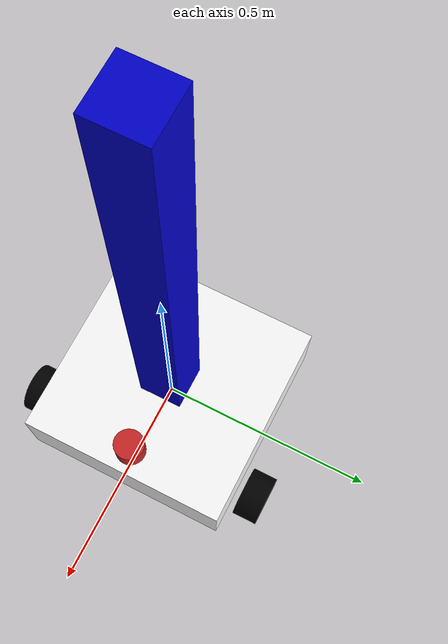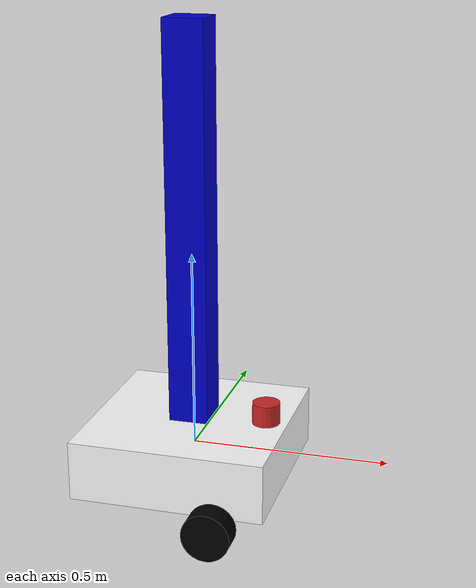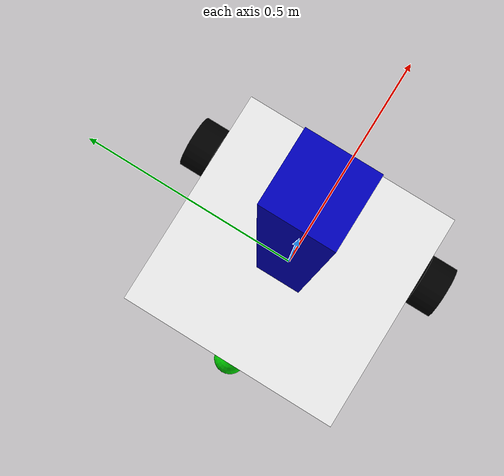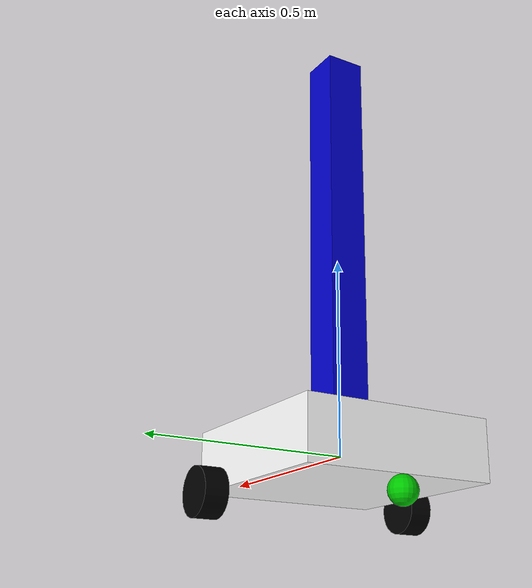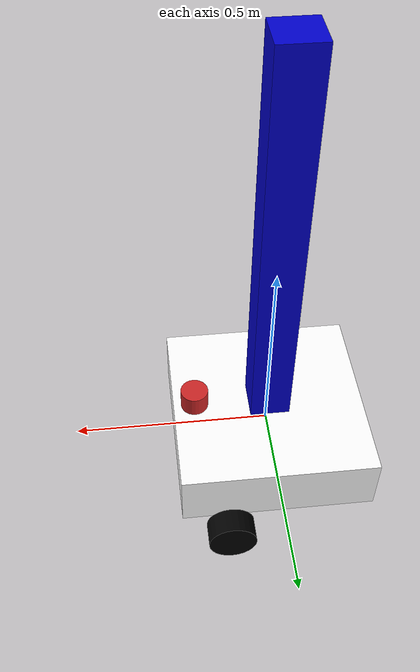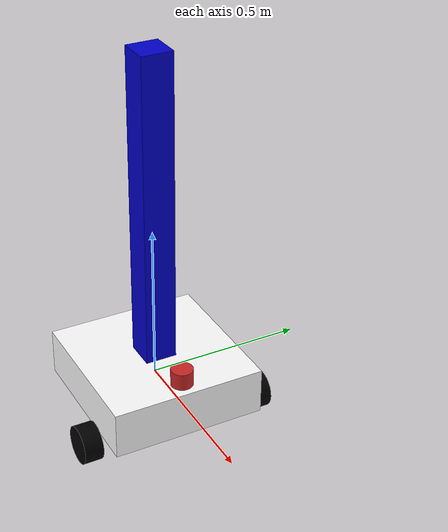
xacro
<?xml version="1.0"?>
<robot xmlns:xacro="http://www.ros.org/wiki/xacro"  name="robot">

    <xacro:arg name="use_ros2_control" default="true"/>

    <xacro:include filename="robot_core.xacro" />

    <xacro:if value="$(arg use_ros2_control)">
        <xacro:include filename="ros2_control.xacro" />
    </xacro:if>
    <xacro:unless value="$(arg use_ros2_control)">
        <xacro:include filename="gazebo_control.xacro" />
    </xacro:unless>

    <xacro:include filename="lidar.xacro" />

</robot>

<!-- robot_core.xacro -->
<robot xmlns:xacro="http://www.ros.org/wiki/xacro" >

    <xacro:include filename="inertial_macros.xacro"/>

    <xacro:property name="chassis_length" value="0.49"/>
    <xacro:property name="chassis_width" value="0.49"/>
    <xacro:property name="chassis_height" value="0.15"/>
    <xacro:property name="chassis_mass" value="5.0"/>
    <xacro:property name="wheel_radius" value="0.06"/>
    <xacro:property name="wheel_thickness" value="0.06"/>
    <xacro:property name="wheel_mass" value="0.2"/>
    <xacro:property name="wheel_offset_x" value="0.226"/>
    <xacro:property name="wheel_offset_y" value="0.1485"/>
    <xacro:property name="wheel_offset_z" value="0.01"/>
    <xacro:property name="caster_wheel_radius" value="0.01"/>
    <xacro:property name="caster_wheel_mass" value="0.01"/>
    <xacro:property name="caster_wheel_offset_x" value="0.075"/>
    <xacro:property name="caster_wheel_offset_z" value="${wheel_offset_z - wheel_radius + caster_wheel_radius}"/>

    <material name="blue">
      <color rgba="0 0 0.8 1"/>
    </material>
    <material name="white">
      <color rgba="1 1 1 1"/>
    </material>
    <material name="black">
      <color rgba="0 0 0 1"/>
    </material>
    <material name="green">
        <color rgba="0.0 0.8 0.0 1.0"/>
    </material>

    <!-- BASE LINK -->
    <link name="base_link">

    </link>

    <!--CHASSIS OF THE ROBOT-->
    <link name="chassis_link">
        <visual>
            <geometry>
                <box size="0.49 0.49 0.15"/>
            </geometry>
            <material name="white"/>
            <origin xyz="0.0 0.0 0.0" rpy="0.0 0.0 0.0"/>
        </visual>
        <collision>
            <geometry>
                <box size="0.49 0.49 0.15"/>
            </geometry>
            <origin xyz="0.0 0.0 0.0" rpy="0.0 0.0 0.0"/>
        </collision>
        <xacro:inertial_box mass="5" x="0.49" y="0.49" z="0.15">
            <origin xyz="0 0 0" rpy="0 0 0"/>
        </xacro:inertial_box>
    </link>

    <joint name="chassis_joint" type="fixed">
        <origin xyz="0 0 0" rpy="0 0 0" />
        <parent link="base_link" />
        <child link="chassis_link" />
        <axis xyz="0 0 0" />
    </joint>

    <gazebo reference="chassis_link">
      <material>Gazebo/Orange</material>
    </gazebo>

    <!--RIGHT WHEEL-->
    <link name="right_wheel">
        <visual>
            <geometry>
                <cylinder radius="0.06" length="0.06"/>
            </geometry>
            <material name="black"/>
            <origin rpy="1.5708 0 0" xyz="0 0 0"/>
        </visual>
        <collision>
            <geometry>
                <sphere radius="0.06"/>
            </geometry>
            <origin rpy="1.5708 0 0" xyz="0 0 0"/>
        </collision>
        <xacro:inertial_cylinder mass="0.2" length="0.06" radius="0.06">
            <origin xyz="0 0 0" rpy="0 0 0"/>
        </xacro:inertial_cylinder>
    </link>

    <joint name="right_wheel_joint" type="continuous">
        <origin xyz="0.125 -0.29 -0.09" rpy="0 0 0" />
        <parent link="base_link" />
        <child link="right_wheel" />
        <axis xyz="0 1 0" />
    </joint>

    <gazebo reference="right_wheel">
      <material>Gazebo/Black</material>
    </gazebo>

    <!--LEFHT WHEEL-->
    <link name="left_wheel">
        <visual>
            <geometry>
                <cylinder radius="0.06" length="0.06"/>
            </geometry>
            <material name="black"/>
            <origin rpy="1.5708 0 0" xyz="0 0 0"/>
        </visual>
        <collision>
            <origin rpy="1.5708 0 0" xyz="0 0 0"/>
            <geometry>
                <sphere radius="0.06"/>
            </geometry>
        </collision>
        <xacro:inertial_cylinder mass="0.2" length="0.06" radius="0.06">
            <origin xyz="0 0 0" rpy="0 0 0"/>
        </xacro:inertial_cylinder>
    </link>

    <joint name="left_wheel_joint" type="continuous">
        <origin xyz="0.125 0.29 -0.09" rpy="0 0 0" />
        <parent link="base_link" />
        <child link="left_wheel" />
        <axis xyz="0 1 0" />
    </joint>

    <gazebo reference="left_wheel">
      <material>Gazebo/Black</material>
    </gazebo>

    <!--CASTER_WHEEL-->
    <link name="caster_wheel">
        <visual>
            <geometry>
                <sphere radius="0.035"/>
            </geometry>
            <material name="green"/>
            <origin rpy="0 0 0" xyz="0 0 0"/>
        </visual>
        <collision>
            <origin rpy="0 0 0" xyz="0 0 0"/>
            <geometry>
                <sphere radius="0.035"/>
            </geometry>
        </collision>
        <xacro:inertial_sphere mass="0.1" radius="0.035">
            <origin xyz="0 0 0" rpy="0 0 0"/>
        </xacro:inertial_sphere>
    </link>

    <joint name="caster_wheel_joint" type="fixed">
        <origin xyz="-0.24 0 -0.110" rpy="0 0 0" />
        <parent link="chassis_link" />
        <child link="caster_wheel" />
        <axis xyz="0 0 0" />
    </joint>

    <gazebo reference="caster_wheel">
        <material>Gazebo/Green</material>
        <mu1 value="0.001"/>
        <mu2 value="0.001"/>
    </gazebo>

    <!--LIGHT TUBE-->
    <link name="light_tube">
        <visual>
            <geometry>
                <box size="0.1 0.1 1.0"/>
            </geometry>
            <material name="blue"/>
            <origin rpy="0 0 0" xyz="0 0 0"/>
        </visual>
        <collision>
            <origin rpy="0 0 0" xyz="0 0 0"/>
            <geometry>
                <box size="0.1 0.1 1.0"/>
            </geometry>
        </collision>
        <xacro:inertial_box mass="3" x="0.1" y="0.1" z="1.0">
            <origin xyz="0 0 0" rpy="0 0 0"/>
        </xacro:inertial_box>
    </link>

    <joint name="light_tube_joint" type="fixed">
        <origin xyz="0.0 0.0 0.575" rpy="0 0 0" />
        <parent link="chassis_link" />
        <child link="light_tube" />
        <axis xyz="0 0 0" />
    </joint>

    <gazebo reference="light_tube">
      <material>Gazebo/Blue</material>
    </gazebo>

</robot>

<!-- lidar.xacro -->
<robot xmlns:xacro="http://www.ros.org/wiki/xacro">

    <!--RPLIDAR-->
    <link name="laser_frame">
        <visual>
            <geometry>
                <cylinder radius="0.035" length="0.055"/>
            </geometry>
            <material name="red"/>
            <origin xyz="0 0 0"/>
        </visual>
        <collision>
            <geometry>
                <cylinder radius="0.035" length="0.055"/>
            </geometry>
        </collision>
        <xacro:inertial_cylinder mass="0.1" length="0.055" radius="0.035">
            <origin xyz="0 0 0" rpy="0 0 0"/>
        </xacro:inertial_cylinder>
    </link>

    <joint name="laser_joint" type="fixed">
        <parent link="chassis_link"/>
        <child link="laser_frame"/>
        <origin xyz="0.19 0 0.1025" rpy="0 0 3.1415"/>
    </joint>

    <gazebo reference="laser_frame">
        <material>Gazebo/Red</material>
        <sensor name="laser" type="ray">
            <pose> 0 0 0 0 0 0 </pose>
            <visualize>false</visualize>
            <update_rate>10</update_rate>
            <ray>
                <scan>
                    <horizontal>
                        <samples>360</samples>
                        <min_angle>-3.14</min_angle>
                        <max_angle>3.14</max_angle>
                    </horizontal>
                </scan>
                <range>
                    <min>0.3</min>
                    <max>12</max>
                </range>
            </ray>

            <plugin name="laser_controller" filename="libgazebo_ros_ray_sensor.so">
                <ros>
                    <argument>~/out:=scan</argument>
                </ros>
                <output_type>sensor_msgs/LaserScan</output_type>
                <frame_name>laser_frame</frame_name>
            </plugin>
        </sensor>
    </gazebo>

</robot>
